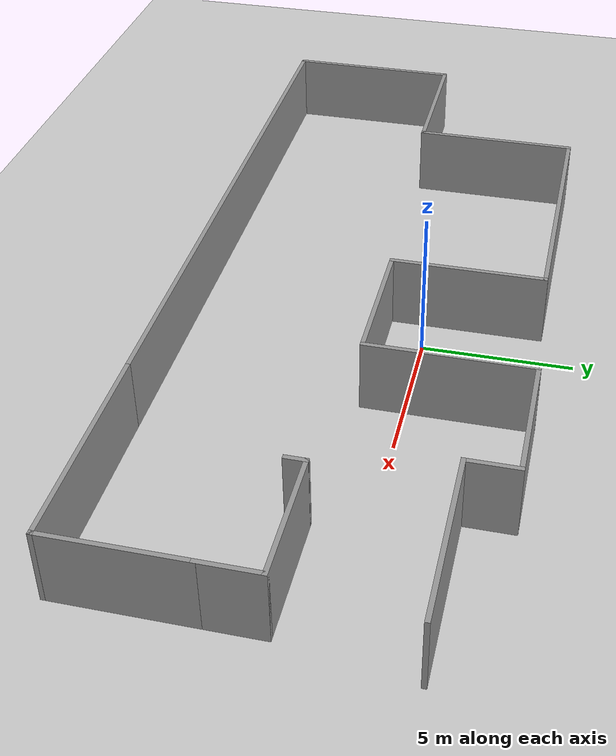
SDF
<sdf version="1.6">
 <world name="default">
  <light name="sun" type="directional">
   <pose>0 0 10 0 -0 0</pose>
   <diffuse>0.8 0.8 0.8 1</diffuse>
   <specular>0.1 0.1 0.1 1</specular>
   <attenuation>
    <range>1000</range>
    <constant>0.9</constant>
    <linear>0.01</linear>
    <quadratic>0.001</quadratic>
   </attenuation>
   <direction>-0.5 0.5 -1</direction>
  </light>
  <model name="ground_plane">
   <static>1</static>
   <link name="link">
    <collision name="collision">
     <geometry><plane><normal>0 0 1</normal><size>100 100</size></plane></geometry>
     <surface><friction><ode><mu>100</mu><mu2>50</mu2></ode></friction></surface>
    </collision>
    <visual name="visual">
     <cast_shadows>0</cast_shadows>
     <geometry><plane><normal>0 0 1</normal><size>100 100</size></plane></geometry>
     <material>
      <script><uri>file://media/materials/scripts/gazebo.material</uri><name>Gazebo/Grey</name></script>
     </material>
    </visual>
   </link>
  </model>
  <gravity>0 0 -9.8</gravity>
  <magnetic_field>6e-06 2.3e-05 -4.2e-05</magnetic_field>
  <atmosphere type="adiabatic"/>
  <physics name="default_physics" default="0" type="ode">
   <max_step_size>0.001</max_step_size>
   <real_time_factor>1</real_time_factor>
   <real_time_update_rate>1000</real_time_update_rate>
  </physics>
  <scene><ambient>0.4 0.4 0.4 1</ambient><background>0.7 0.7 0.7 1</background><shadows>1</shadows></scene>
  <spherical_coordinates>
   <surface_model>EARTH_WGS84</surface_model>
   <latitude_deg>0</latitude_deg>
   <longitude_deg>0</longitude_deg>
   <elevation>0</elevation>
   <heading_deg>0</heading_deg>
  </spherical_coordinates>
  <model name="build1">
   <pose>-0.993482 -1.95521 0 0 -0 0</pose>
   <link name="Wall_0">
    <collision name="Wall_0_Collision">
     <geometry><box><size>0.75 0.15 2.5</size></box></geometry>
     <pose>0 0 1.25 0 -0 0</pose>
    </collision>
    <visual name="Wall_0_Visual">
     <pose>0 0 1.25 0 -0 0</pose>
     <geometry><box><size>0.75 0.15 2.5</size></box></geometry>
     <material>
      <script><uri>file://media/materials/scripts/gazebo.material</uri><name>Gazebo/Grey</name></script>
      <ambient>1 1 1 1</ambient>
     </material>
    </visual>
    <pose>9.6 -0.075 0 0 -0 1.5708</pose>
   </link>
   <link name="Wall_1">
    <collision name="Wall_1_Collision">
     <geometry><box><size>4.25 0.15 2.5</size></box></geometry>
     <pose>0 0 1.25 0 -0 0</pose>
    </collision>
    <visual name="Wall_1_Visual">
     <pose>0 0 1.25 0 -0 0</pose>
     <geometry><box><size>4.25 0.15 2.5</size></box></geometry>
     <material>
      <script><uri>file://media/materials/scripts/gazebo.material</uri><name>Gazebo/Grey</name></script>
      <ambient>1 1 1 1</ambient>
     </material>
    </visual>
    <pose>11.65 0.225 0 0 -0 0</pose>
   </link>
   <link name="Wall_10">
    <collision name="Wall_10_Collision">
     <geometry><box><size>5.25 0.15 2.5</size></box></geometry>
     <pose>0 0 1.25 0 -0 0</pose>
    </collision>
    <visual name="Wall_10_Visual">
     <pose>0 0 1.25 0 -0 0</pose>
     <geometry><box><size>5.25 0.15 2.5</size></box></geometry>
     <material>
      <script><uri>file://media/materials/scripts/gazebo.material</uri><name>Gazebo/Grey</name></script>
      <ambient>1 1 1 1</ambient>
     </material>
    </visual>
    <pose>-0.3 3.175 0 0 0 -1.5708</pose>
   </link>
   <link name="Wall_11">
    <collision name="Wall_11_Collision">
     <geometry><box><size>4.75 0.15 2.5</size></box></geometry>
     <pose>0 0 1.25 0 -0 0</pose>
    </collision>
    <visual name="Wall_11_Visual">
     <pose>0 0 1.25 0 -0 0</pose>
     <geometry><box><size>4.75 0.15 2.5</size></box></geometry>
     <material>
      <script><uri>file://media/materials/scripts/gazebo.material</uri><name>Gazebo/Grey</name></script>
      <ambient>1 1 1 1</ambient>
     </material>
    </visual>
    <pose>2 0.625 0 0 -0 0</pose>
   </link>
   <link name="Wall_12">
    <collision name="Wall_12_Collision">
     <geometry><box><size>5.5 0.15 2.5</size></box></geometry>
     <pose>0 0 1.25 0 -0 0</pose>
    </collision>
    <visual name="Wall_12_Visual">
     <pose>0 0 1.25 0 -0 0</pose>
     <geometry><box><size>5.5 0.15 2.5</size></box></geometry>
     <material>
      <script><uri>file://media/materials/scripts/gazebo.material</uri><name>Gazebo/Grey</name></script>
      <ambient>1 1 1 1</ambient>
     </material>
    </visual>
    <pose>4.3 3.3 0 0 -0 1.5708</pose>
   </link>
   <link name="Wall_13">
    <collision name="Wall_13_Collision">
     <geometry><box><size>4.5 0.15 2.5</size></box></geometry>
     <pose>0 0 1.25 0 -0 0</pose>
    </collision>
    <visual name="Wall_13_Visual">
     <pose>0 0 1.25 0 -0 0</pose>
     <geometry><box><size>4.5 0.15 2.5</size></box></geometry>
     <material>
      <script><uri>file://media/materials/scripts/gazebo.material</uri><name>Gazebo/Grey</name></script>
      <ambient>1 1 1 1</ambient>
     </material>
    </visual>
    <pose>6.475 5.975 0 0 -0 0</pose>
   </link>
   <link name="Wall_14">
    <collision name="Wall_14_Collision">
     <geometry><box><size>1.75 0.15 2.5</size></box></geometry>
     <pose>0 0 1.25 0 -0 0</pose>
    </collision>
    <visual name="Wall_14_Visual">
     <pose>0 0 1.25 0 -0 0</pose>
     <geometry><box><size>1.75 0.15 2.5</size></box></geometry>
     <material>
      <script><uri>file://media/materials/scripts/gazebo.material</uri><name>Gazebo/Grey</name></script>
      <ambient>1 1 1 1</ambient>
     </material>
    </visual>
    <pose>8.65 5.175 0 0 0 -1.5708</pose>
   </link>
   <link name="Wall_15">
    <collision name="Wall_15_Collision">
     <geometry><box><size>5.75 0.15 2.5</size></box></geometry>
     <pose>0 0 1.25 0 -0 0</pose>
    </collision>
    <visual name="Wall_15_Visual">
     <pose>0 0 1.25 0 -0 0</pose>
     <geometry><box><size>5.75 0.15 2.5</size></box></geometry>
     <material>
      <script><uri>file://media/materials/scripts/gazebo.material</uri><name>Gazebo/Grey</name></script>
      <ambient>1 1 1 1</ambient>
     </material>
    </visual>
    <pose>11.45 4.375 0 0 -0 0</pose>
   </link>
   <link name="Wall_2">
    <collision name="Wall_2_Collision">
     <geometry><box><size>2 0.15 2.5</size></box></geometry>
     <pose>0 0 1.25 0 -0 0</pose>
    </collision>
    <visual name="Wall_2_Visual">
     <pose>0 0 1.25 0 -0 0</pose>
     <geometry><box><size>2 0.15 2.5</size></box></geometry>
     <material>
      <script><uri>file://media/materials/scripts/gazebo.material</uri><name>Gazebo/Grey</name></script>
      <ambient>1 1 1 1</ambient>
     </material>
    </visual>
    <pose>13.7 -0.7 0 0 0 -1.5708</pose>
   </link>
   <link name="Wall_3">
    <collision name="Wall_3_Collision">
     <geometry><box><size>4.5 0.15 2.5</size></box></geometry>
     <pose>0 0 1.25 0 -0 0</pose>
    </collision>
    <visual name="Wall_3_Visual">
     <pose>0 0 1.25 0 -0 0</pose>
     <geometry><box><size>4.5 0.15 2.5</size></box></geometry>
     <material>
      <script><uri>file://media/materials/scripts/gazebo.material</uri><name>Gazebo/Grey</name></script>
      <ambient>1 1 1 1</ambient>
     </material>
    </visual>
    <pose>13.7 -3.8 0 0 0 -1.5708</pose>
   </link>
   <link name="Wall_4">
    <collision name="Wall_4_Collision">
     <geometry><box><size>7 0.15 2.5</size></box></geometry>
     <pose>0 0 1.25 0 -0 0</pose>
    </collision>
    <visual name="Wall_4_Visual">
     <pose>0 0 1.25 0 -0 0</pose>
     <geometry><box><size>7 0.15 2.5</size></box></geometry>
     <material>
      <script><uri>file://media/materials/scripts/gazebo.material</uri><name>Gazebo/Grey</name></script>
      <ambient>1 1 1 1</ambient>
     </material>
    </visual>
    <pose>10.275 -5.975 0 0 -0 3.14159</pose>
   </link>
   <link name="Wall_5">
    <collision name="Wall_5_Collision">
     <geometry><box><size>21.25 0.15 2.5</size></box></geometry>
     <pose>0 0 1.25 0 -0 0</pose>
    </collision>
    <visual name="Wall_5_Visual">
     <pose>0 0 1.25 0 -0 0</pose>
     <geometry><box><size>21.25 0.15 2.5</size></box></geometry>
     <material>
      <script><uri>file://media/materials/scripts/gazebo.material</uri><name>Gazebo/Grey</name></script>
      <ambient>1 1 1 1</ambient>
     </material>
    </visual>
    <pose>-3.7 -5.975 0 0 -0 3.14159</pose>
   </link>
   <link name="Wall_6">
    <collision name="Wall_6_Collision">
     <geometry><box><size>6.25 0.15 2.5</size></box></geometry>
     <pose>0 0 1.25 0 -0 0</pose>
    </collision>
    <visual name="Wall_6_Visual">
     <pose>0 0 1.25 0 -0 0</pose>
     <geometry><box><size>6.25 0.15 2.5</size></box></geometry>
     <material>
      <script><uri>file://media/materials/scripts/gazebo.material</uri><name>Gazebo/Grey</name></script>
      <ambient>1 1 1 1</ambient>
     </material>
    </visual>
    <pose>-14.25 -2.925 0 0 -0 1.5708</pose>
   </link>
   <link name="Wall_7">
    <collision name="Wall_7_Collision">
     <geometry><box><size>5.25 0.15 2.5</size></box></geometry>
     <pose>0 0 1.25 0 -0 0</pose>
    </collision>
    <visual name="Wall_7_Visual">
     <pose>0 0 1.25 0 -0 0</pose>
     <geometry><box><size>5.25 0.15 2.5</size></box></geometry>
     <material>
      <script><uri>file://media/materials/scripts/gazebo.material</uri><name>Gazebo/Grey</name></script>
      <ambient>1 1 1 1</ambient>
     </material>
    </visual>
    <pose>-11.7 0.125 0 0 -0 0</pose>
   </link>
   <link name="Wall_8">
    <collision name="Wall_8_Collision">
     <geometry><box><size>5.75 0.15 2.5</size></box></geometry>
     <pose>0 0 1.25 0 -0 0</pose>
    </collision>
    <visual name="Wall_8_Visual">
     <pose>0 0 1.25 0 -0 0</pose>
     <geometry><box><size>5.75 0.15 2.5</size></box></geometry>
     <material>
      <script><uri>file://media/materials/scripts/gazebo.material</uri><name>Gazebo/Grey</name></script>
      <ambient>1 1 1 1</ambient>
     </material>
    </visual>
    <pose>-9.15 2.925 0 0 -0 1.5708</pose>
   </link>
   <link name="Wall_9">
    <collision name="Wall_9_Collision">
     <geometry><box><size>9 0.15 2.5</size></box></geometry>
     <pose>0 0 1.25 0 -0 0</pose>
    </collision>
    <visual name="Wall_9_Visual">
     <pose>0 0 1.25 0 -0 0</pose>
     <geometry><box><size>9 0.15 2.5</size></box></geometry>
     <material>
      <script><uri>file://media/materials/scripts/gazebo.material</uri><name>Gazebo/Grey</name></script>
      <ambient>1 1 1 1</ambient>
     </material>
    </visual>
    <pose>-4.725 5.725 0 0 -0 0</pose>
   </link>
   <static>1</static>
  </model>
 </world>
</sdf>
